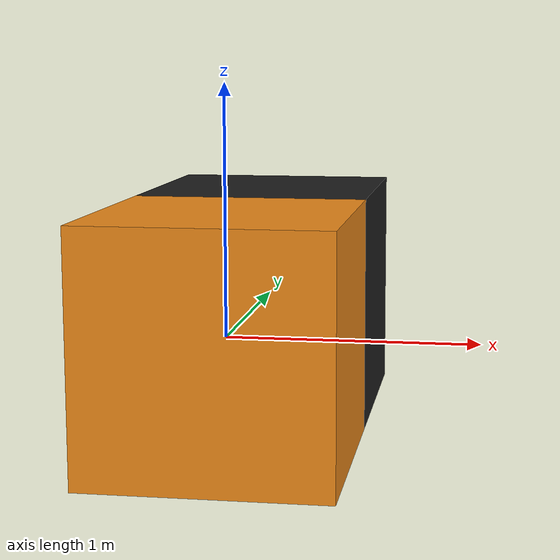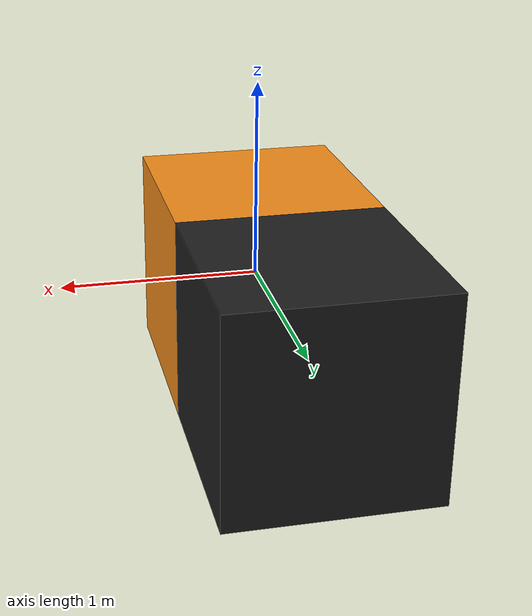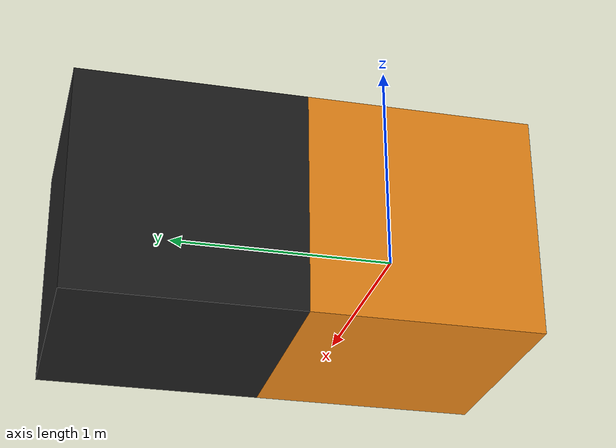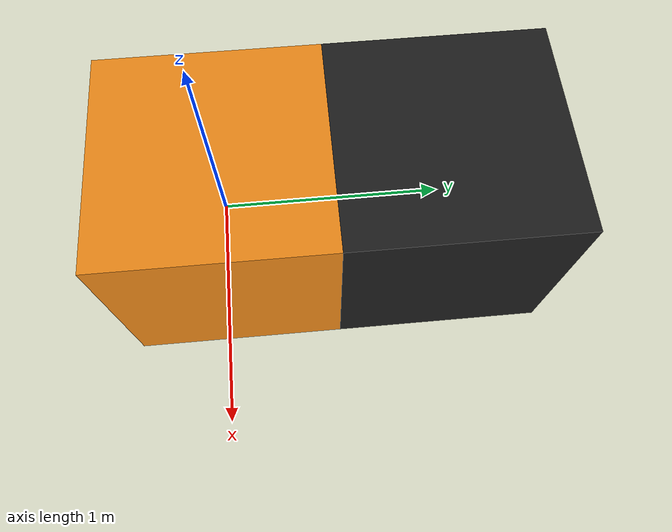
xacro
<?xml version="1.0"?>

<robot name="LinearActuator" xmlns:xacro="http://www.ros.org/wiki/xacro">

	<xacro:include filename="$(find linear-actuator_description)/urdf/servo.gazebo" />

	<link name="world"/>

	<joint name="fixed" type="fixed">
		<parent link="world"/>
		<child link="parent"/>
	</joint>

	<link name="parent">
		<inertial>
	      <mass value="0.5"/>
	      <inertia ixx="1.302e-04" iyy="4.0208e-04" izz="4.8021-04"/>
	      <origin rpy="0 0 0" xyz="0 0 0"/>
	    </inertial>
		<collision>
	      <geometry>
	        <box size="1 1 1"/>
	      </geometry>
	      <origin rpy="0 0 0" xyz="0 0 0"/>
	    </collision>
	    <visual>
	      <geometry>
		  	<box size="1 1 1"/>
	      </geometry>
	      <origin rpy="0 0 0" xyz="0 0 0"/>
	    </visual>
	</link>
	<joint name="Base" type="revolute">
		<parent link="parent"/>
		<child link="child"/>
		<origin rpy="0 0 0" xyz="0 0 0"/>
		<axis xyz="0 0 0"/>
		<limit effort="3.38" lower="-3.38" upper="1" velocity="3"/>
	</joint>
	<link name="child">
		<inertial>
	      <mass value="0.5"/>
	      <inertia ixx="1.302e-04" iyy="4.0208e-04" izz="4.8021-04"/>
	      <origin rpy="0 0 0" xyz="0 1 0"/>
	    </inertial>
		<collision>
	      <geometry>
	        <box size="1 1 1"/>
	      </geometry>
	      <origin rpy="0 0 0" xyz="0 1 0"/>
	    </collision>
	    <visual>
	      <geometry>
		  	<box size="1 1 1"/>
	      </geometry>
	      <origin rpy="0 0 0" xyz="0 1 0"/>
	    </visual>
	</link>
</robot>
